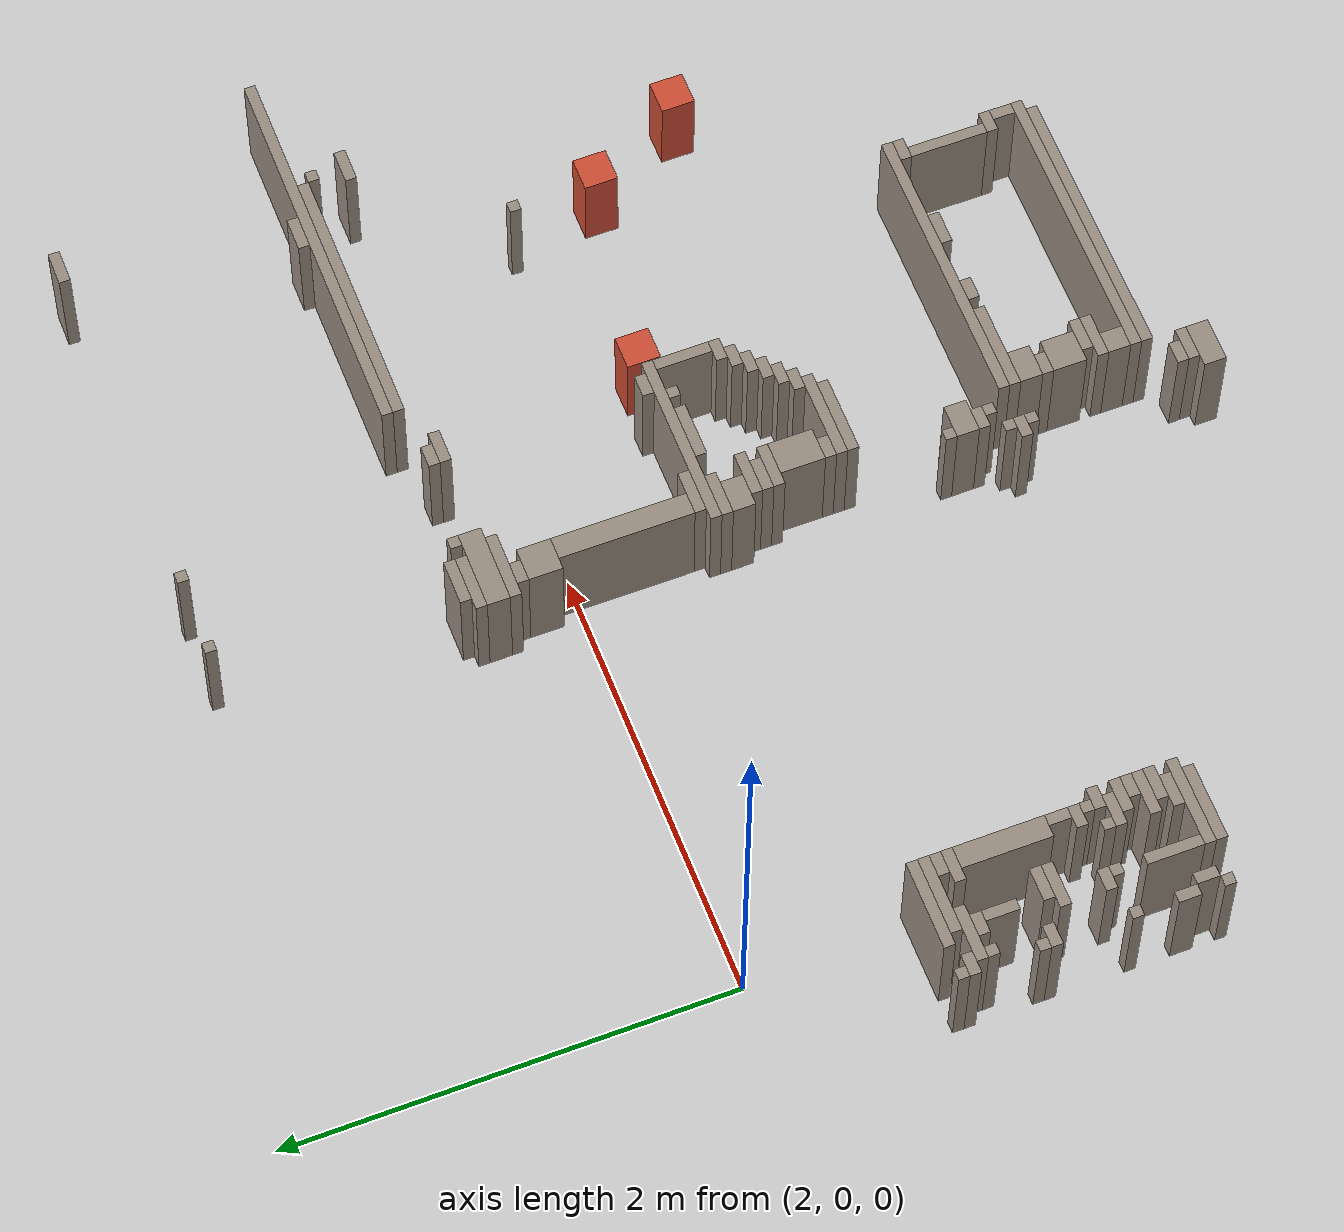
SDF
<sdf version="1.8">
 <world name="bolsao_real">
  <model name="ground_plane">
   <static>true</static>
   <link name="link">
    <collision name="col">
     <geometry><plane><normal>0 0 1</normal><size>100 100</size></plane></geometry>
    </collision>
    <visual name="vis">
     <geometry><plane><normal>0 0 1</normal><size>100 100</size></plane></geometry>
     <material><ambient>0.8 0.8 0.8 1</ambient><diffuse>0.8 0.8 0.8 1</diffuse></material>
    </visual>
   </link>
  </model>
  <model name="wall_13">
   <static>true</static>
   <pose>4.515 0.412 0.250 0 0 0</pose>
   <link name="link">
    <collision name="col"><geometry><box><size>0.100 0.050 0.500</size></box></geometry></collision>
    <visual name="vis">
     <geometry><box><size>0.100 0.050 0.500</size></box></geometry>
     <material><ambient>0.6 0.55 0.5 1</ambient><diffuse>0.6 0.55 0.5 1</diffuse></material>
    </visual>
   </link>
  </model>
  <model name="wall_15">
   <static>true</static>
   <pose>3.915 0.512 0.250 0 0 0</pose>
   <link name="link">
    <collision name="col"><geometry><box><size>0.200 0.050 0.500</size></box></geometry></collision>
    <visual name="vis">
     <geometry><box><size>0.200 0.050 0.500</size></box></geometry>
     <material><ambient>0.6 0.55 0.5 1</ambient><diffuse>0.6 0.55 0.5 1</diffuse></material>
    </visual>
   </link>
  </model>
  <model name="wall_17">
   <static>true</static>
   <pose>3.890 0.162 0.250 0 0 0</pose>
   <link name="link">
    <collision name="col"><geometry><box><size>0.150 0.150 0.500</size></box></geometry></collision>
    <visual name="vis">
     <geometry><box><size>0.150 0.150 0.500</size></box></geometry>
     <material><ambient>0.6 0.55 0.5 1</ambient><diffuse>0.6 0.55 0.5 1</diffuse></material>
    </visual>
   </link>
  </model>
  <model name="wall_21">
   <static>true</static>
   <pose>3.965 -0.538 0.250 0 0 0</pose>
   <link name="link">
    <collision name="col"><geometry><box><size>0.200 0.050 0.500</size></box></geometry></collision>
    <visual name="vis">
     <geometry><box><size>0.200 0.050 0.500</size></box></geometry>
     <material><ambient>0.6 0.55 0.5 1</ambient><diffuse>0.6 0.55 0.5 1</diffuse></material>
    </visual>
   </link>
  </model>
  <model name="wall_23">
   <static>true</static>
   <pose>3.965 -0.788 0.250 0 0 0</pose>
   <link name="link">
    <collision name="col"><geometry><box><size>0.200 0.050 0.500</size></box></geometry></collision>
    <visual name="vis">
     <geometry><box><size>0.200 0.050 0.500</size></box></geometry>
     <material><ambient>0.6 0.55 0.5 1</ambient><diffuse>0.6 0.55 0.5 1</diffuse></material>
    </visual>
   </link>
  </model>
  <model name="wall_25">
   <static>true</static>
   <pose>2.015 -0.838 0.250 0 0 0</pose>
   <link name="link">
    <collision name="col"><geometry><box><size>0.100 0.050 0.500</size></box></geometry></collision>
    <visual name="vis">
     <geometry><box><size>0.100 0.050 0.500</size></box></geometry>
     <material><ambient>0.6 0.55 0.5 1</ambient><diffuse>0.6 0.55 0.5 1</diffuse></material>
    </visual>
   </link>
  </model>
  <model name="wall_26">
   <static>true</static>
   <pose>4.515 -0.538 0.250 0 0 0</pose>
   <link name="link">
    <collision name="col"><geometry><box><size>0.100 0.050 0.500</size></box></geometry></collision>
    <visual name="vis">
     <geometry><box><size>0.100 0.050 0.500</size></box></geometry>
     <material><ambient>0.6 0.55 0.5 1</ambient><diffuse>0.6 0.55 0.5 1</diffuse></material>
    </visual>
   </link>
  </model>
  <model name="wall_28">
   <static>true</static>
   <pose>1.540 -0.738 0.250 0 0 0</pose>
   <link name="link">
    <collision name="col"><geometry><box><size>0.050 0.050 0.500</size></box></geometry></collision>
    <visual name="vis">
     <geometry><box><size>0.050 0.050 0.500</size></box></geometry>
     <material><ambient>0.6 0.55 0.5 1</ambient><diffuse>0.6 0.55 0.5 1</diffuse></material>
    </visual>
   </link>
  </model>
  <model name="wall_30">
   <static>true</static>
   <pose>1.565 -0.788 0.250 0 0 0</pose>
   <link name="link">
    <collision name="col"><geometry><box><size>0.100 0.050 0.500</size></box></geometry></collision>
    <visual name="vis">
     <geometry><box><size>0.100 0.050 0.500</size></box></geometry>
     <material><ambient>0.6 0.55 0.5 1</ambient><diffuse>0.6 0.55 0.5 1</diffuse></material>
    </visual>
   </link>
  </model>
  <model name="wall_33">
   <static>true</static>
   <pose>1.715 -0.888 0.250 0 0 0</pose>
   <link name="link">
    <collision name="col"><geometry><box><size>0.100 0.050 0.500</size></box></geometry></collision>
    <visual name="vis">
     <geometry><box><size>0.100 0.050 0.500</size></box></geometry>
     <material><ambient>0.6 0.55 0.5 1</ambient><diffuse>0.6 0.55 0.5 1</diffuse></material>
    </visual>
   </link>
  </model>
  <model name="wall_34">
   <static>true</static>
   <pose>2.015 -1.113 0.250 0 0 0</pose>
   <link name="link">
    <collision name="col"><geometry><box><size>0.100 0.400 0.500</size></box></geometry></collision>
    <visual name="vis">
     <geometry><box><size>0.100 0.400 0.500</size></box></geometry>
     <material><ambient>0.6 0.55 0.5 1</ambient><diffuse>0.6 0.55 0.5 1</diffuse></material>
    </visual>
   </link>
  </model>
  <model name="wall_36">
   <static>true</static>
   <pose>1.540 -1.088 0.250 0 0 0</pose>
   <link name="link">
    <collision name="col"><geometry><box><size>0.050 0.050 0.500</size></box></geometry></collision>
    <visual name="vis">
     <geometry><box><size>0.050 0.050 0.500</size></box></geometry>
     <material><ambient>0.6 0.55 0.5 1</ambient><diffuse>0.6 0.55 0.5 1</diffuse></material>
    </visual>
   </link>
  </model>
  <model name="wall_37">
   <static>true</static>
   <pose>1.740 -0.988 0.250 0 0 0</pose>
   <link name="link">
    <collision name="col"><geometry><box><size>0.050 0.150 0.500</size></box></geometry></collision>
    <visual name="vis">
     <geometry><box><size>0.050 0.150 0.500</size></box></geometry>
     <material><ambient>0.6 0.55 0.5 1</ambient><diffuse>0.6 0.55 0.5 1</diffuse></material>
    </visual>
   </link>
  </model>
  <model name="wall_38">
   <static>true</static>
   <pose>2.040 -1.363 0.250 0 0 0</pose>
   <link name="link">
    <collision name="col"><geometry><box><size>0.050 0.100 0.500</size></box></geometry></collision>
    <visual name="vis">
     <geometry><box><size>0.050 0.100 0.500</size></box></geometry>
     <material><ambient>0.6 0.55 0.5 1</ambient><diffuse>0.6 0.55 0.5 1</diffuse></material>
    </visual>
   </link>
  </model>
  <model name="wall_41">
   <static>true</static>
   <pose>1.990 -0.888 0.250 0 0 0</pose>
   <link name="link">
    <collision name="col"><geometry><box><size>0.150 0.050 0.500</size></box></geometry></collision>
    <visual name="vis">
     <geometry><box><size>0.150 0.050 0.500</size></box></geometry>
     <material><ambient>0.6 0.55 0.5 1</ambient><diffuse>0.6 0.55 0.5 1</diffuse></material>
    </visual>
   </link>
  </model>
  <model name="wall_43">
   <static>true</static>
   <pose>1.740 -1.488 0.250 0 0 0</pose>
   <link name="link">
    <collision name="col"><geometry><box><size>0.050 0.050 0.500</size></box></geometry></collision>
    <visual name="vis">
     <geometry><box><size>0.050 0.050 0.500</size></box></geometry>
     <material><ambient>0.6 0.55 0.5 1</ambient><diffuse>0.6 0.55 0.5 1</diffuse></material>
    </visual>
   </link>
  </model>
  <model name="wall_45">
   <static>true</static>
   <pose>1.540 -1.488 0.250 0 0 0</pose>
   <link name="link">
    <collision name="col"><geometry><box><size>0.050 0.050 0.500</size></box></geometry></collision>
    <visual name="vis">
     <geometry><box><size>0.050 0.050 0.500</size></box></geometry>
     <material><ambient>0.6 0.55 0.5 1</ambient><diffuse>0.6 0.55 0.5 1</diffuse></material>
    </visual>
   </link>
  </model>
  <model name="wall_46">
   <static>true</static>
   <pose>2.065 -1.538 0.250 0 0 0</pose>
   <link name="link">
    <collision name="col"><geometry><box><size>0.100 0.050 0.500</size></box></geometry></collision>
    <visual name="vis">
     <geometry><box><size>0.100 0.050 0.500</size></box></geometry>
     <material><ambient>0.6 0.55 0.5 1</ambient><diffuse>0.6 0.55 0.5 1</diffuse></material>
    </visual>
   </link>
  </model>
  <model name="wall_47">
   <static>true</static>
   <pose>3.890 -0.713 0.250 0 0 0</pose>
   <link name="link">
    <collision name="col"><geometry><box><size>0.150 0.100 0.500</size></box></geometry></collision>
    <visual name="vis">
     <geometry><box><size>0.150 0.100 0.500</size></box></geometry>
     <material><ambient>0.6 0.55 0.5 1</ambient><diffuse>0.6 0.55 0.5 1</diffuse></material>
    </visual>
   </link>
  </model>
  <model name="wall_48">
   <static>true</static>
   <pose>1.590 -0.888 0.250 0 0 0</pose>
   <link name="link">
    <collision name="col"><geometry><box><size>0.050 0.050 0.500</size></box></geometry></collision>
    <visual name="vis">
     <geometry><box><size>0.050 0.050 0.500</size></box></geometry>
     <material><ambient>0.6 0.55 0.5 1</ambient><diffuse>0.6 0.55 0.5 1</diffuse></material>
    </visual>
   </link>
  </model>
  <model name="wall_49">
   <static>true</static>
   <pose>2.040 -1.638 0.250 0 0 0</pose>
   <link name="link">
    <collision name="col"><geometry><box><size>0.150 0.050 0.500</size></box></geometry></collision>
    <visual name="vis">
     <geometry><box><size>0.150 0.050 0.500</size></box></geometry>
     <material><ambient>0.6 0.55 0.5 1</ambient><diffuse>0.6 0.55 0.5 1</diffuse></material>
    </visual>
   </link>
  </model>
  <model name="wall_50">
   <static>true</static>
   <pose>3.865 0.262 0.250 0 0 0</pose>
   <link name="link">
    <collision name="col"><geometry><box><size>0.100 0.050 0.500</size></box></geometry></collision>
    <visual name="vis">
     <geometry><box><size>0.100 0.050 0.500</size></box></geometry>
     <material><ambient>0.6 0.55 0.5 1</ambient><diffuse>0.6 0.55 0.5 1</diffuse></material>
    </visual>
   </link>
  </model>
  <model name="wall_51">
   <static>true</static>
   <pose>1.990 -1.588 0.250 0 0 0</pose>
   <link name="link">
    <collision name="col"><geometry><box><size>0.150 0.050 0.500</size></box></geometry></collision>
    <visual name="vis">
     <geometry><box><size>0.150 0.050 0.500</size></box></geometry>
     <material><ambient>0.6 0.55 0.5 1</ambient><diffuse>0.6 0.55 0.5 1</diffuse></material>
    </visual>
   </link>
  </model>
  <model name="wall_52">
   <static>true</static>
   <pose>1.540 -1.713 0.250 0 0 0</pose>
   <link name="link">
    <collision name="col"><geometry><box><size>0.050 0.100 0.500</size></box></geometry></collision>
    <visual name="vis">
     <geometry><box><size>0.050 0.100 0.500</size></box></geometry>
     <material><ambient>0.6 0.55 0.5 1</ambient><diffuse>0.6 0.55 0.5 1</diffuse></material>
    </visual>
   </link>
  </model>
  <model name="wall_55">
   <static>true</static>
   <pose>1.890 -0.788 0.250 0 0 0</pose>
   <link name="link">
    <collision name="col"><geometry><box><size>0.350 0.050 0.500</size></box></geometry></collision>
    <visual name="vis">
     <geometry><box><size>0.350 0.050 0.500</size></box></geometry>
     <material><ambient>0.6 0.55 0.5 1</ambient><diffuse>0.6 0.55 0.5 1</diffuse></material>
    </visual>
   </link>
  </model>
  <model name="wall_57">
   <static>true</static>
   <pose>3.790 -1.888 0.250 0 0 0</pose>
   <link name="link">
    <collision name="col"><geometry><box><size>0.050 0.050 0.500</size></box></geometry></collision>
    <visual name="vis">
     <geometry><box><size>0.050 0.050 0.500</size></box></geometry>
     <material><ambient>0.6 0.55 0.5 1</ambient><diffuse>0.6 0.55 0.5 1</diffuse></material>
    </visual>
   </link>
  </model>
  <model name="wall_58">
   <static>true</static>
   <pose>4.465 -0.988 0.250 0 0 0</pose>
   <link name="link">
    <collision name="col"><geometry><box><size>0.100 0.050 0.500</size></box></geometry></collision>
    <visual name="vis">
     <geometry><box><size>0.100 0.050 0.500</size></box></geometry>
     <material><ambient>0.6 0.55 0.5 1</ambient><diffuse>0.6 0.55 0.5 1</diffuse></material>
    </visual>
   </link>
  </model>
  <model name="wall_65">
   <static>true</static>
   <pose>4.040 -2.063 0.250 0 0 0</pose>
   <link name="link">
    <collision name="col"><geometry><box><size>0.150 0.100 0.500</size></box></geometry></collision>
    <visual name="vis">
     <geometry><box><size>0.150 0.100 0.500</size></box></geometry>
     <material><ambient>0.6 0.55 0.5 1</ambient><diffuse>0.6 0.55 0.5 1</diffuse></material>
    </visual>
   </link>
  </model>
  <model name="wall_69">
   <static>true</static>
   <pose>5.215 -1.988 0.250 0 0 0</pose>
   <link name="link">
    <collision name="col"><geometry><box><size>0.100 0.050 0.500</size></box></geometry></collision>
    <visual name="vis">
     <geometry><box><size>0.100 0.050 0.500</size></box></geometry>
     <material><ambient>0.6 0.55 0.5 1</ambient><diffuse>0.6 0.55 0.5 1</diffuse></material>
    </visual>
   </link>
  </model>
  <model name="wall_70">
   <static>true</static>
   <pose>4.015 -2.138 0.250 0 0 0</pose>
   <link name="link">
    <collision name="col"><geometry><box><size>0.100 0.050 0.500</size></box></geometry></collision>
    <visual name="vis">
     <geometry><box><size>0.100 0.050 0.500</size></box></geometry>
     <material><ambient>0.6 0.55 0.5 1</ambient><diffuse>0.6 0.55 0.5 1</diffuse></material>
    </visual>
   </link>
  </model>
  <model name="wall_72">
   <static>true</static>
   <pose>4.615 -1.938 0.250 0 0 0</pose>
   <link name="link">
    <collision name="col"><geometry><box><size>1.300 0.050 0.500</size></box></geometry></collision>
    <visual name="vis">
     <geometry><box><size>1.300 0.050 0.500</size></box></geometry>
     <material><ambient>0.6 0.55 0.5 1</ambient><diffuse>0.6 0.55 0.5 1</diffuse></material>
    </visual>
   </link>
  </model>
  <model name="wall_77">
   <static>true</static>
   <pose>3.865 -1.788 0.250 0 0 0</pose>
   <link name="link">
    <collision name="col"><geometry><box><size>0.100 0.050 0.500</size></box></geometry></collision>
    <visual name="vis">
     <geometry><box><size>0.100 0.050 0.500</size></box></geometry>
     <material><ambient>0.6 0.55 0.5 1</ambient><diffuse>0.6 0.55 0.5 1</diffuse></material>
    </visual>
   </link>
  </model>
  <model name="wall_78">
   <static>true</static>
   <pose>3.890 -1.713 0.250 0 0 0</pose>
   <link name="link">
    <collision name="col"><geometry><box><size>0.150 0.100 0.500</size></box></geometry></collision>
    <visual name="vis">
     <geometry><box><size>0.150 0.100 0.500</size></box></geometry>
     <material><ambient>0.6 0.55 0.5 1</ambient><diffuse>0.6 0.55 0.5 1</diffuse></material>
    </visual>
   </link>
  </model>
  <model name="wall_89">
   <static>true</static>
   <pose>3.940 -0.838 0.250 0 0 0</pose>
   <link name="link">
    <collision name="col"><geometry><box><size>0.150 0.050 0.500</size></box></geometry></collision>
    <visual name="vis">
     <geometry><box><size>0.150 0.050 0.500</size></box></geometry>
     <material><ambient>0.6 0.55 0.5 1</ambient><diffuse>0.6 0.55 0.5 1</diffuse></material>
    </visual>
   </link>
  </model>
  <model name="wall_90">
   <static>true</static>
   <pose>1.715 -1.438 0.250 0 0 0</pose>
   <link name="link">
    <collision name="col"><geometry><box><size>0.100 0.050 0.500</size></box></geometry></collision>
    <visual name="vis">
     <geometry><box><size>0.100 0.050 0.500</size></box></geometry>
     <material><ambient>0.6 0.55 0.5 1</ambient><diffuse>0.6 0.55 0.5 1</diffuse></material>
    </visual>
   </link>
  </model>
  <model name="wall_92">
   <static>true</static>
   <pose>3.865 -2.688 0.250 0 0 0</pose>
   <link name="link">
    <collision name="col"><geometry><box><size>0.100 0.050 0.500</size></box></geometry></collision>
    <visual name="vis">
     <geometry><box><size>0.100 0.050 0.500</size></box></geometry>
     <material><ambient>0.6 0.55 0.5 1</ambient><diffuse>0.6 0.55 0.5 1</diffuse></material>
    </visual>
   </link>
  </model>
  <model name="wall_93">
   <static>true</static>
   <pose>4.365 -1.088 0.250 0 0 0</pose>
   <link name="link">
    <collision name="col"><geometry><box><size>0.100 0.050 0.500</size></box></geometry></collision>
    <visual name="vis">
     <geometry><box><size>0.100 0.050 0.500</size></box></geometry>
     <material><ambient>0.6 0.55 0.5 1</ambient><diffuse>0.6 0.55 0.5 1</diffuse></material>
    </visual>
   </link>
  </model>
  <model name="wall_94">
   <static>true</static>
   <pose>5.240 -2.463 0.250 0 0 0</pose>
   <link name="link">
    <collision name="col"><geometry><box><size>0.050 0.100 0.500</size></box></geometry></collision>
    <visual name="vis">
     <geometry><box><size>0.050 0.100 0.500</size></box></geometry>
     <material><ambient>0.6 0.55 0.5 1</ambient><diffuse>0.6 0.55 0.5 1</diffuse></material>
    </visual>
   </link>
  </model>
  <model name="wall_95">
   <static>true</static>
   <pose>5.215 -2.388 0.250 0 0 0</pose>
   <link name="link">
    <collision name="col"><geometry><box><size>0.100 0.050 0.500</size></box></geometry></collision>
    <visual name="vis">
     <geometry><box><size>0.100 0.050 0.500</size></box></geometry>
     <material><ambient>0.6 0.55 0.5 1</ambient><diffuse>0.6 0.55 0.5 1</diffuse></material>
    </visual>
   </link>
  </model>
  <model name="wall_97">
   <static>true</static>
   <pose>3.890 -1.838 0.250 0 0 0</pose>
   <link name="link">
    <collision name="col"><geometry><box><size>0.050 0.050 0.500</size></box></geometry></collision>
    <visual name="vis">
     <geometry><box><size>0.050 0.050 0.500</size></box></geometry>
     <material><ambient>0.6 0.55 0.5 1</ambient><diffuse>0.6 0.55 0.5 1</diffuse></material>
    </visual>
   </link>
  </model>
  <model name="wall_98">
   <static>true</static>
   <pose>3.990 1.562 0.250 0 0 0</pose>
   <link name="link">
    <collision name="col"><geometry><box><size>0.050 0.050 0.500</size></box></geometry></collision>
    <visual name="vis">
     <geometry><box><size>0.050 0.050 0.500</size></box></geometry>
     <material><ambient>0.6 0.55 0.5 1</ambient><diffuse>0.6 0.55 0.5 1</diffuse></material>
    </visual>
   </link>
  </model>
  <model name="wall_104">
   <static>true</static>
   <pose>3.915 -0.213 0.250 0 0 0</pose>
   <link name="link">
    <collision name="col"><geometry><box><size>0.100 0.600 0.500</size></box></geometry></collision>
    <visual name="vis">
     <geometry><box><size>0.100 0.600 0.500</size></box></geometry>
     <material><ambient>0.6 0.55 0.5 1</ambient><diffuse>0.6 0.55 0.5 1</diffuse></material>
    </visual>
   </link>
  </model>
  <model name="wall_114">
   <static>true</static>
   <pose>4.440 -0.638 0.250 0 0 0</pose>
   <link name="link">
    <collision name="col"><geometry><box><size>0.050 0.050 0.500</size></box></geometry></collision>
    <visual name="vis">
     <geometry><box><size>0.050 0.050 0.500</size></box></geometry>
     <material><ambient>0.6 0.55 0.5 1</ambient><diffuse>0.6 0.55 0.5 1</diffuse></material>
    </visual>
   </link>
  </model>
  <model name="wall_131">
   <static>true</static>
   <pose>1.540 -1.888 0.250 0 0 0</pose>
   <link name="link">
    <collision name="col"><geometry><box><size>0.050 0.050 0.500</size></box></geometry></collision>
    <visual name="vis">
     <geometry><box><size>0.050 0.050 0.500</size></box></geometry>
     <material><ambient>0.6 0.55 0.5 1</ambient><diffuse>0.6 0.55 0.5 1</diffuse></material>
    </visual>
   </link>
  </model>
  <model name="wall_132">
   <static>true</static>
   <pose>1.940 -1.538 0.250 0 0 0</pose>
   <link name="link">
    <collision name="col"><geometry><box><size>0.050 0.050 0.500</size></box></geometry></collision>
    <visual name="vis">
     <geometry><box><size>0.050 0.050 0.500</size></box></geometry>
     <material><ambient>0.6 0.55 0.5 1</ambient><diffuse>0.6 0.55 0.5 1</diffuse></material>
    </visual>
   </link>
  </model>
  <model name="wall_134">
   <static>true</static>
   <pose>5.990 0.412 0.250 0 0 0</pose>
   <link name="link">
    <collision name="col"><geometry><box><size>0.050 0.050 0.500</size></box></geometry></collision>
    <visual name="vis">
     <geometry><box><size>0.050 0.050 0.500</size></box></geometry>
     <material><ambient>0.6 0.55 0.5 1</ambient><diffuse>0.6 0.55 0.5 1</diffuse></material>
    </visual>
   </link>
  </model>
  <model name="wall_137">
   <static>true</static>
   <pose>3.890 -2.738 0.250 0 0 0</pose>
   <link name="link">
    <collision name="col"><geometry><box><size>0.150 0.050 0.500</size></box></geometry></collision>
    <visual name="vis">
     <geometry><box><size>0.150 0.050 0.500</size></box></geometry>
     <material><ambient>0.6 0.55 0.5 1</ambient><diffuse>0.6 0.55 0.5 1</diffuse></material>
    </visual>
   </link>
  </model>
  <model name="wall_143">
   <static>true</static>
   <pose>4.340 1.562 0.250 0 0 0</pose>
   <link name="link">
    <collision name="col"><geometry><box><size>0.050 0.050 0.500</size></box></geometry></collision>
    <visual name="vis">
     <geometry><box><size>0.050 0.050 0.500</size></box></geometry>
     <material><ambient>0.6 0.55 0.5 1</ambient><diffuse>0.6 0.55 0.5 1</diffuse></material>
    </visual>
   </link>
  </model>
  <model name="wall_144">
   <static>true</static>
   <pose>5.940 1.562 0.250 0 0 0</pose>
   <link name="link">
    <collision name="col"><geometry><box><size>0.150 0.050 0.500</size></box></geometry></collision>
    <visual name="vis">
     <geometry><box><size>0.150 0.050 0.500</size></box></geometry>
     <material><ambient>0.6 0.55 0.5 1</ambient><diffuse>0.6 0.55 0.5 1</diffuse></material>
    </visual>
   </link>
  </model>
  <model name="wall_147">
   <static>true</static>
   <pose>5.990 0.262 0.250 0 0 0</pose>
   <link name="link">
    <collision name="col"><geometry><box><size>0.150 0.050 0.500</size></box></geometry></collision>
    <visual name="vis">
     <geometry><box><size>0.150 0.050 0.500</size></box></geometry>
     <material><ambient>0.6 0.55 0.5 1</ambient><diffuse>0.6 0.55 0.5 1</diffuse></material>
    </visual>
   </link>
  </model>
  <model name="wall_158">
   <static>true</static>
   <pose>5.740 0.562 0.250 0 0 0</pose>
   <link name="link">
    <collision name="col"><geometry><box><size>0.150 0.050 0.500</size></box></geometry></collision>
    <visual name="vis">
     <geometry><box><size>0.150 0.050 0.500</size></box></geometry>
     <material><ambient>0.6 0.55 0.5 1</ambient><diffuse>0.6 0.55 0.5 1</diffuse></material>
    </visual>
   </link>
  </model>
  <model name="wall_161">
   <static>true</static>
   <pose>3.915 -0.638 0.250 0 0 0</pose>
   <link name="link">
    <collision name="col"><geometry><box><size>0.200 0.050 0.500</size></box></geometry></collision>
    <visual name="vis">
     <geometry><box><size>0.200 0.050 0.500</size></box></geometry>
     <material><ambient>0.6 0.55 0.5 1</ambient><diffuse>0.6 0.55 0.5 1</diffuse></material>
    </visual>
   </link>
  </model>
  <model name="wall_162">
   <static>true</static>
   <pose>5.640 0.512 0.250 0 0 0</pose>
   <link name="link">
    <collision name="col"><geometry><box><size>1.750 0.050 0.500</size></box></geometry></collision>
    <visual name="vis">
     <geometry><box><size>1.750 0.050 0.500</size></box></geometry>
     <material><ambient>0.6 0.55 0.5 1</ambient><diffuse>0.6 0.55 0.5 1</diffuse></material>
    </visual>
   </link>
  </model>
  <model name="wall_166">
   <static>true</static>
   <pose>3.890 0.462 0.250 0 0 0</pose>
   <link name="link">
    <collision name="col"><geometry><box><size>0.250 0.050 0.500</size></box></geometry></collision>
    <visual name="vis">
     <geometry><box><size>0.250 0.050 0.500</size></box></geometry>
     <material><ambient>0.6 0.55 0.5 1</ambient><diffuse>0.6 0.55 0.5 1</diffuse></material>
    </visual>
   </link>
  </model>
  <model name="wall_167">
   <static>true</static>
   <pose>4.090 0.462 0.250 0 0 0</pose>
   <link name="link">
    <collision name="col"><geometry><box><size>0.050 0.050 0.500</size></box></geometry></collision>
    <visual name="vis">
     <geometry><box><size>0.050 0.050 0.500</size></box></geometry>
     <material><ambient>0.6 0.55 0.5 1</ambient><diffuse>0.6 0.55 0.5 1</diffuse></material>
    </visual>
   </link>
  </model>
  <model name="wall_168">
   <static>true</static>
   <pose>5.365 0.462 0.250 0 0 0</pose>
   <link name="link">
    <collision name="col"><geometry><box><size>1.200 0.050 0.500</size></box></geometry></collision>
    <visual name="vis">
     <geometry><box><size>1.200 0.050 0.500</size></box></geometry>
     <material><ambient>0.6 0.55 0.5 1</ambient><diffuse>0.6 0.55 0.5 1</diffuse></material>
    </visual>
   </link>
  </model>
  <model name="wall_170">
   <static>true</static>
   <pose>3.940 0.387 0.250 0 0 0</pose>
   <link name="link">
    <collision name="col"><geometry><box><size>0.350 0.100 0.500</size></box></geometry></collision>
    <visual name="vis">
     <geometry><box><size>0.350 0.100 0.500</size></box></geometry>
     <material><ambient>0.6 0.55 0.5 1</ambient><diffuse>0.6 0.55 0.5 1</diffuse></material>
    </visual>
   </link>
  </model>
  <model name="wall_171">
   <static>true</static>
   <pose>4.515 -0.938 0.250 0 0 0</pose>
   <link name="link">
    <collision name="col"><geometry><box><size>0.100 0.050 0.500</size></box></geometry></collision>
    <visual name="vis">
     <geometry><box><size>0.100 0.050 0.500</size></box></geometry>
     <material><ambient>0.6 0.55 0.5 1</ambient><diffuse>0.6 0.55 0.5 1</diffuse></material>
    </visual>
   </link>
  </model>
  <model name="wall_173">
   <static>true</static>
   <pose>4.540 0.362 0.250 0 0 0</pose>
   <link name="link">
    <collision name="col"><geometry><box><size>0.150 0.050 0.500</size></box></geometry></collision>
    <visual name="vis">
     <geometry><box><size>0.150 0.050 0.500</size></box></geometry>
     <material><ambient>0.6 0.55 0.5 1</ambient><diffuse>0.6 0.55 0.5 1</diffuse></material>
    </visual>
   </link>
  </model>
  <model name="wall_176">
   <static>true</static>
   <pose>3.915 0.312 0.250 0 0 0</pose>
   <link name="link">
    <collision name="col"><geometry><box><size>0.300 0.050 0.500</size></box></geometry></collision>
    <visual name="vis">
     <geometry><box><size>0.300 0.050 0.500</size></box></geometry>
     <material><ambient>0.6 0.55 0.5 1</ambient><diffuse>0.6 0.55 0.5 1</diffuse></material>
    </visual>
   </link>
  </model>
  <model name="wall_189">
   <static>true</static>
   <pose>5.540 -0.338 0.250 0 0 0</pose>
   <link name="link">
    <collision name="col"><geometry><box><size>0.050 0.050 0.500</size></box></geometry></collision>
    <visual name="vis">
     <geometry><box><size>0.050 0.050 0.500</size></box></geometry>
     <material><ambient>0.6 0.55 0.5 1</ambient><diffuse>0.6 0.55 0.5 1</diffuse></material>
    </visual>
   </link>
  </model>
  <model name="wall_192">
   <static>true</static>
   <pose>3.965 -0.888 0.250 0 0 0</pose>
   <link name="link">
    <collision name="col"><geometry><box><size>0.200 0.050 0.500</size></box></geometry></collision>
    <visual name="vis">
     <geometry><box><size>0.200 0.050 0.500</size></box></geometry>
     <material><ambient>0.6 0.55 0.5 1</ambient><diffuse>0.6 0.55 0.5 1</diffuse></material>
    </visual>
   </link>
  </model>
  <model name="wall_194">
   <static>true</static>
   <pose>4.215 -0.588 0.250 0 0 0</pose>
   <link name="link">
    <collision name="col"><geometry><box><size>0.800 0.050 0.500</size></box></geometry></collision>
    <visual name="vis">
     <geometry><box><size>0.800 0.050 0.500</size></box></geometry>
     <material><ambient>0.6 0.55 0.5 1</ambient><diffuse>0.6 0.55 0.5 1</diffuse></material>
    </visual>
   </link>
  </model>
  <model name="wall_195">
   <static>true</static>
   <pose>4.240 -0.638 0.250 0 0 0</pose>
   <link name="link">
    <collision name="col"><geometry><box><size>0.250 0.050 0.500</size></box></geometry></collision>
    <visual name="vis">
     <geometry><box><size>0.250 0.050 0.500</size></box></geometry>
     <material><ambient>0.6 0.55 0.5 1</ambient><diffuse>0.6 0.55 0.5 1</diffuse></material>
    </visual>
   </link>
  </model>
  <model name="wall_197">
   <static>true</static>
   <pose>4.590 -0.738 0.250 0 0 0</pose>
   <link name="link">
    <collision name="col"><geometry><box><size>0.050 0.250 0.500</size></box></geometry></collision>
    <visual name="vis">
     <geometry><box><size>0.050 0.250 0.500</size></box></geometry>
     <material><ambient>0.6 0.55 0.5 1</ambient><diffuse>0.6 0.55 0.5 1</diffuse></material>
    </visual>
   </link>
  </model>
  <model name="wall_201">
   <static>true</static>
   <pose>1.865 -0.738 0.250 0 0 0</pose>
   <link name="link">
    <collision name="col"><geometry><box><size>0.400 0.050 0.500</size></box></geometry></collision>
    <visual name="vis">
     <geometry><box><size>0.400 0.050 0.500</size></box></geometry>
     <material><ambient>0.6 0.55 0.5 1</ambient><diffuse>0.6 0.55 0.5 1</diffuse></material>
    </visual>
   </link>
  </model>
  <model name="wall_203">
   <static>true</static>
   <pose>1.565 -1.138 0.250 0 0 0</pose>
   <link name="link">
    <collision name="col"><geometry><box><size>0.100 0.050 0.500</size></box></geometry></collision>
    <visual name="vis">
     <geometry><box><size>0.100 0.050 0.500</size></box></geometry>
     <material><ambient>0.6 0.55 0.5 1</ambient><diffuse>0.6 0.55 0.5 1</diffuse></material>
    </visual>
   </link>
  </model>
  <model name="wall_204">
   <static>true</static>
   <pose>1.890 -1.938 0.250 0 0 0</pose>
   <link name="link">
    <collision name="col"><geometry><box><size>0.350 0.050 0.500</size></box></geometry></collision>
    <visual name="vis">
     <geometry><box><size>0.350 0.050 0.500</size></box></geometry>
     <material><ambient>0.6 0.55 0.5 1</ambient><diffuse>0.6 0.55 0.5 1</diffuse></material>
    </visual>
   </link>
  </model>
  <model name="wall_209">
   <static>true</static>
   <pose>1.690 -0.838 0.250 0 0 0</pose>
   <link name="link">
    <collision name="col"><geometry><box><size>0.250 0.050 0.500</size></box></geometry></collision>
    <visual name="vis">
     <geometry><box><size>0.250 0.050 0.500</size></box></geometry>
     <material><ambient>0.6 0.55 0.5 1</ambient><diffuse>0.6 0.55 0.5 1</diffuse></material>
    </visual>
   </link>
  </model>
  <model name="wall_210">
   <static>true</static>
   <pose>2.015 -1.438 0.250 0 0 0</pose>
   <link name="link">
    <collision name="col"><geometry><box><size>0.100 0.050 0.500</size></box></geometry></collision>
    <visual name="vis">
     <geometry><box><size>0.100 0.050 0.500</size></box></geometry>
     <material><ambient>0.6 0.55 0.5 1</ambient><diffuse>0.6 0.55 0.5 1</diffuse></material>
    </visual>
   </link>
  </model>
  <model name="wall_213">
   <static>true</static>
   <pose>1.590 -1.813 0.250 0 0 0</pose>
   <link name="link">
    <collision name="col"><geometry><box><size>0.050 0.100 0.500</size></box></geometry></collision>
    <visual name="vis">
     <geometry><box><size>0.050 0.100 0.500</size></box></geometry>
     <material><ambient>0.6 0.55 0.5 1</ambient><diffuse>0.6 0.55 0.5 1</diffuse></material>
    </visual>
   </link>
  </model>
  <model name="wall_215">
   <static>true</static>
   <pose>1.990 -1.838 0.250 0 0 0</pose>
   <link name="link">
    <collision name="col"><geometry><box><size>0.150 0.050 0.500</size></box></geometry></collision>
    <visual name="vis">
     <geometry><box><size>0.150 0.050 0.500</size></box></geometry>
     <material><ambient>0.6 0.55 0.5 1</ambient><diffuse>0.6 0.55 0.5 1</diffuse></material>
    </visual>
   </link>
  </model>
  <model name="wall_216">
   <static>true</static>
   <pose>4.565 -0.888 0.250 0 0 0</pose>
   <link name="link">
    <collision name="col"><geometry><box><size>0.100 0.050 0.500</size></box></geometry></collision>
    <visual name="vis">
     <geometry><box><size>0.100 0.050 0.500</size></box></geometry>
     <material><ambient>0.6 0.55 0.5 1</ambient><diffuse>0.6 0.55 0.5 1</diffuse></material>
    </visual>
   </link>
  </model>
  <model name="wall_217">
   <static>true</static>
   <pose>1.740 -1.738 0.250 0 0 0</pose>
   <link name="link">
    <collision name="col"><geometry><box><size>0.050 0.250 0.500</size></box></geometry></collision>
    <visual name="vis">
     <geometry><box><size>0.050 0.250 0.500</size></box></geometry>
     <material><ambient>0.6 0.55 0.5 1</ambient><diffuse>0.6 0.55 0.5 1</diffuse></material>
    </visual>
   </link>
  </model>
  <model name="wall_218">
   <static>true</static>
   <pose>3.990 -1.013 0.250 0 0 0</pose>
   <link name="link">
    <collision name="col"><geometry><box><size>0.150 0.200 0.500</size></box></geometry></collision>
    <visual name="vis">
     <geometry><box><size>0.150 0.200 0.500</size></box></geometry>
     <material><ambient>0.6 0.55 0.5 1</ambient><diffuse>0.6 0.55 0.5 1</diffuse></material>
    </visual>
   </link>
  </model>
  <model name="wall_219">
   <static>true</static>
   <pose>4.465 -1.988 0.250 0 0 0</pose>
   <link name="link">
    <collision name="col"><geometry><box><size>0.100 0.050 0.500</size></box></geometry></collision>
    <visual name="vis">
     <geometry><box><size>0.100 0.050 0.500</size></box></geometry>
     <material><ambient>0.6 0.55 0.5 1</ambient><diffuse>0.6 0.55 0.5 1</diffuse></material>
    </visual>
   </link>
  </model>
  <model name="wall_220">
   <static>true</static>
   <pose>4.415 -1.038 0.250 0 0 0</pose>
   <link name="link">
    <collision name="col"><geometry><box><size>0.100 0.050 0.500</size></box></geometry></collision>
    <visual name="vis">
     <geometry><box><size>0.100 0.050 0.500</size></box></geometry>
     <material><ambient>0.6 0.55 0.5 1</ambient><diffuse>0.6 0.55 0.5 1</diffuse></material>
    </visual>
   </link>
  </model>
  <model name="wall_222">
   <static>true</static>
   <pose>3.965 -1.138 0.250 0 0 0</pose>
   <link name="link">
    <collision name="col"><geometry><box><size>0.100 0.050 0.500</size></box></geometry></collision>
    <visual name="vis">
     <geometry><box><size>0.100 0.050 0.500</size></box></geometry>
     <material><ambient>0.6 0.55 0.5 1</ambient><diffuse>0.6 0.55 0.5 1</diffuse></material>
    </visual>
   </link>
  </model>
  <model name="wall_223">
   <static>true</static>
   <pose>4.315 -1.138 0.250 0 0 0</pose>
   <link name="link">
    <collision name="col"><geometry><box><size>0.100 0.050 0.500</size></box></geometry></collision>
    <visual name="vis">
     <geometry><box><size>0.100 0.050 0.500</size></box></geometry>
     <material><ambient>0.6 0.55 0.5 1</ambient><diffuse>0.6 0.55 0.5 1</diffuse></material>
    </visual>
   </link>
  </model>
  <model name="wall_224">
   <static>true</static>
   <pose>1.790 -1.188 0.250 0 0 0</pose>
   <link name="link">
    <collision name="col"><geometry><box><size>0.150 0.050 0.500</size></box></geometry></collision>
    <visual name="vis">
     <geometry><box><size>0.150 0.050 0.500</size></box></geometry>
     <material><ambient>0.6 0.55 0.5 1</ambient><diffuse>0.6 0.55 0.5 1</diffuse></material>
    </visual>
   </link>
  </model>
  <model name="wall_225">
   <static>true</static>
   <pose>4.115 -1.188 0.250 0 0 0</pose>
   <link name="link">
    <collision name="col"><geometry><box><size>0.400 0.050 0.500</size></box></geometry></collision>
    <visual name="vis">
     <geometry><box><size>0.400 0.050 0.500</size></box></geometry>
     <material><ambient>0.6 0.55 0.5 1</ambient><diffuse>0.6 0.55 0.5 1</diffuse></material>
    </visual>
   </link>
  </model>
  <model name="wall_226">
   <static>true</static>
   <pose>1.765 -1.238 0.250 0 0 0</pose>
   <link name="link">
    <collision name="col"><geometry><box><size>0.200 0.050 0.500</size></box></geometry></collision>
    <visual name="vis">
     <geometry><box><size>0.200 0.050 0.500</size></box></geometry>
     <material><ambient>0.6 0.55 0.5 1</ambient><diffuse>0.6 0.55 0.5 1</diffuse></material>
    </visual>
   </link>
  </model>
  <model name="wall_227">
   <static>true</static>
   <pose>4.090 -1.238 0.250 0 0 0</pose>
   <link name="link">
    <collision name="col"><geometry><box><size>0.350 0.050 0.500</size></box></geometry></collision>
    <visual name="vis">
     <geometry><box><size>0.350 0.050 0.500</size></box></geometry>
     <material><ambient>0.6 0.55 0.5 1</ambient><diffuse>0.6 0.55 0.5 1</diffuse></material>
    </visual>
   </link>
  </model>
  <model name="wall_228">
   <static>true</static>
   <pose>2.040 -1.488 0.250 0 0 0</pose>
   <link name="link">
    <collision name="col"><geometry><box><size>0.050 0.050 0.500</size></box></geometry></collision>
    <visual name="vis">
     <geometry><box><size>0.050 0.050 0.500</size></box></geometry>
     <material><ambient>0.6 0.55 0.5 1</ambient><diffuse>0.6 0.55 0.5 1</diffuse></material>
    </visual>
   </link>
  </model>
  <model name="wall_231">
   <static>true</static>
   <pose>2.065 -1.688 0.250 0 0 0</pose>
   <link name="link">
    <collision name="col"><geometry><box><size>0.100 0.050 0.500</size></box></geometry></collision>
    <visual name="vis">
     <geometry><box><size>0.100 0.050 0.500</size></box></geometry>
     <material><ambient>0.6 0.55 0.5 1</ambient><diffuse>0.6 0.55 0.5 1</diffuse></material>
    </visual>
   </link>
  </model>
  <model name="wall_234">
   <static>true</static>
   <pose>2.040 -1.788 0.250 0 0 0</pose>
   <link name="link">
    <collision name="col"><geometry><box><size>0.150 0.050 0.500</size></box></geometry></collision>
    <visual name="vis">
     <geometry><box><size>0.150 0.050 0.500</size></box></geometry>
     <material><ambient>0.6 0.55 0.5 1</ambient><diffuse>0.6 0.55 0.5 1</diffuse></material>
    </visual>
   </link>
  </model>
  <model name="wall_235">
   <static>true</static>
   <pose>3.840 -1.638 0.250 0 0 0</pose>
   <link name="link">
    <collision name="col"><geometry><box><size>0.050 0.050 0.500</size></box></geometry></collision>
    <visual name="vis">
     <geometry><box><size>0.050 0.050 0.500</size></box></geometry>
     <material><ambient>0.6 0.55 0.5 1</ambient><diffuse>0.6 0.55 0.5 1</diffuse></material>
    </visual>
   </link>
  </model>
  <model name="wall_237">
   <static>true</static>
   <pose>2.015 -1.738 0.250 0 0 0</pose>
   <link name="link">
    <collision name="col"><geometry><box><size>0.200 0.050 0.500</size></box></geometry></collision>
    <visual name="vis">
     <geometry><box><size>0.200 0.050 0.500</size></box></geometry>
     <material><ambient>0.6 0.55 0.5 1</ambient><diffuse>0.6 0.55 0.5 1</diffuse></material>
    </visual>
   </link>
  </model>
  <model name="wall_239">
   <static>true</static>
   <pose>1.915 -1.888 0.250 0 0 0</pose>
   <link name="link">
    <collision name="col"><geometry><box><size>0.400 0.050 0.500</size></box></geometry></collision>
    <visual name="vis">
     <geometry><box><size>0.400 0.050 0.500</size></box></geometry>
     <material><ambient>0.6 0.55 0.5 1</ambient><diffuse>0.6 0.55 0.5 1</diffuse></material>
    </visual>
   </link>
  </model>
  <model name="wall_240">
   <static>true</static>
   <pose>3.790 -1.988 0.250 0 0 0</pose>
   <link name="link">
    <collision name="col"><geometry><box><size>0.050 0.050 0.500</size></box></geometry></collision>
    <visual name="vis">
     <geometry><box><size>0.050 0.050 0.500</size></box></geometry>
     <material><ambient>0.6 0.55 0.5 1</ambient><diffuse>0.6 0.55 0.5 1</diffuse></material>
    </visual>
   </link>
  </model>
  <model name="wall_241">
   <static>true</static>
   <pose>3.765 -1.938 0.250 0 0 0</pose>
   <link name="link">
    <collision name="col"><geometry><box><size>0.100 0.050 0.500</size></box></geometry></collision>
    <visual name="vis">
     <geometry><box><size>0.100 0.050 0.500</size></box></geometry>
     <material><ambient>0.6 0.55 0.5 1</ambient><diffuse>0.6 0.55 0.5 1</diffuse></material>
    </visual>
   </link>
  </model>
  <model name="wall_242">
   <static>true</static>
   <pose>4.615 -2.538 0.250 0 0 0</pose>
   <link name="link">
    <collision name="col"><geometry><box><size>1.300 0.050 0.500</size></box></geometry></collision>
    <visual name="vis">
     <geometry><box><size>1.300 0.050 0.500</size></box></geometry>
     <material><ambient>0.6 0.55 0.5 1</ambient><diffuse>0.6 0.55 0.5 1</diffuse></material>
    </visual>
   </link>
  </model>
  <model name="wall_243">
   <static>true</static>
   <pose>4.165 -1.988 0.250 0 0 0</pose>
   <link name="link">
    <collision name="col"><geometry><box><size>0.400 0.050 0.500</size></box></geometry></collision>
    <visual name="vis">
     <geometry><box><size>0.400 0.050 0.500</size></box></geometry>
     <material><ambient>0.6 0.55 0.5 1</ambient><diffuse>0.6 0.55 0.5 1</diffuse></material>
    </visual>
   </link>
  </model>
  <model name="wall_244">
   <static>true</static>
   <pose>4.790 -1.988 0.250 0 0 0</pose>
   <link name="link">
    <collision name="col"><geometry><box><size>0.150 0.050 0.500</size></box></geometry></collision>
    <visual name="vis">
     <geometry><box><size>0.150 0.050 0.500</size></box></geometry>
     <material><ambient>0.6 0.55 0.5 1</ambient><diffuse>0.6 0.55 0.5 1</diffuse></material>
    </visual>
   </link>
  </model>
  <model name="wall_248">
   <static>true</static>
   <pose>4.040 -2.238 0.250 0 0 0</pose>
   <link name="link">
    <collision name="col"><geometry><box><size>0.150 0.150 0.500</size></box></geometry></collision>
    <visual name="vis">
     <geometry><box><size>0.150 0.150 0.500</size></box></geometry>
     <material><ambient>0.6 0.55 0.5 1</ambient><diffuse>0.6 0.55 0.5 1</diffuse></material>
    </visual>
   </link>
  </model>
  <model name="wall_249">
   <static>true</static>
   <pose>5.190 -2.188 0.250 0 0 0</pose>
   <link name="link">
    <collision name="col"><geometry><box><size>0.050 0.350 0.500</size></box></geometry></collision>
    <visual name="vis">
     <geometry><box><size>0.050 0.350 0.500</size></box></geometry>
     <material><ambient>0.6 0.55 0.5 1</ambient><diffuse>0.6 0.55 0.5 1</diffuse></material>
    </visual>
   </link>
  </model>
  <model name="wall_253">
   <static>true</static>
   <pose>4.015 -2.463 0.250 0 0 0</pose>
   <link name="link">
    <collision name="col"><geometry><box><size>0.100 0.100 0.500</size></box></geometry></collision>
    <visual name="vis">
     <geometry><box><size>0.100 0.100 0.500</size></box></geometry>
     <material><ambient>0.6 0.55 0.5 1</ambient><diffuse>0.6 0.55 0.5 1</diffuse></material>
    </visual>
   </link>
  </model>
  <model name="wall_254">
   <static>true</static>
   <pose>4.090 -2.338 0.250 0 0 0</pose>
   <link name="link">
    <collision name="col"><geometry><box><size>0.150 0.050 0.500</size></box></geometry></collision>
    <visual name="vis">
     <geometry><box><size>0.150 0.050 0.500</size></box></geometry>
     <material><ambient>0.6 0.55 0.5 1</ambient><diffuse>0.6 0.55 0.5 1</diffuse></material>
    </visual>
   </link>
  </model>
  <model name="wall_255">
   <static>true</static>
   <pose>4.065 -2.388 0.250 0 0 0</pose>
   <link name="link">
    <collision name="col"><geometry><box><size>0.200 0.050 0.500</size></box></geometry></collision>
    <visual name="vis">
     <geometry><box><size>0.200 0.050 0.500</size></box></geometry>
     <material><ambient>0.6 0.55 0.5 1</ambient><diffuse>0.6 0.55 0.5 1</diffuse></material>
    </visual>
   </link>
  </model>
  <model name="wall_260">
   <static>true</static>
   <pose>4.590 -2.588 0.250 0 0 0</pose>
   <link name="link">
    <collision name="col"><geometry><box><size>1.250 0.050 0.500</size></box></geometry></collision>
    <visual name="vis">
     <geometry><box><size>1.250 0.050 0.500</size></box></geometry>
     <material><ambient>0.6 0.55 0.5 1</ambient><diffuse>0.6 0.55 0.5 1</diffuse></material>
    </visual>
   </link>
  </model>
  <model name="wall_264">
   <static>true</static>
   <pose>3.865 -2.813 0.250 0 0 0</pose>
   <link name="link">
    <collision name="col"><geometry><box><size>0.200 0.100 0.500</size></box></geometry></collision>
    <visual name="vis">
     <geometry><box><size>0.200 0.100 0.500</size></box></geometry>
     <material><ambient>0.6 0.55 0.5 1</ambient><diffuse>0.6 0.55 0.5 1</diffuse></material>
    </visual>
   </link>
  </model>
  <model name="clutter_1">
   <static>true</static>
   <pose>5.65 -0.75 0.200 0 0 0</pose>
   <link name="link">
    <collision name="col"><geometry><box><size>0.150 0.150 0.400</size></box></geometry></collision>
    <visual name="vis">
     <geometry><box><size>0.150 0.150 0.400</size></box></geometry>
     <material><ambient>0.8 0.3 0.2 1</ambient><diffuse>0.8 0.3 0.2 1</diffuse></material>
    </visual>
   </link>
  </model>
  <model name="clutter_2">
   <static>true</static>
   <pose>5.90 -1.20 0.200 0 0 0</pose>
   <link name="link">
    <collision name="col"><geometry><box><size>0.150 0.150 0.400</size></box></geometry></collision>
    <visual name="vis">
     <geometry><box><size>0.150 0.150 0.400</size></box></geometry>
     <material><ambient>0.8 0.3 0.2 1</ambient><diffuse>0.8 0.3 0.2 1</diffuse></material>
    </visual>
   </link>
  </model>
  <model name="clutter_3">
   <static>true</static>
   <pose>4.75 -0.60 0.200 0 0 0</pose>
   <link name="link">
    <collision name="col"><geometry><box><size>0.150 0.150 0.400</size></box></geometry></collision>
    <visual name="vis">
     <geometry><box><size>0.150 0.150 0.400</size></box></geometry>
     <material><ambient>0.8 0.3 0.2 1</ambient><diffuse>0.8 0.3 0.2 1</diffuse></material>
    </visual>
   </link>
  </model>
 </world>
</sdf>
